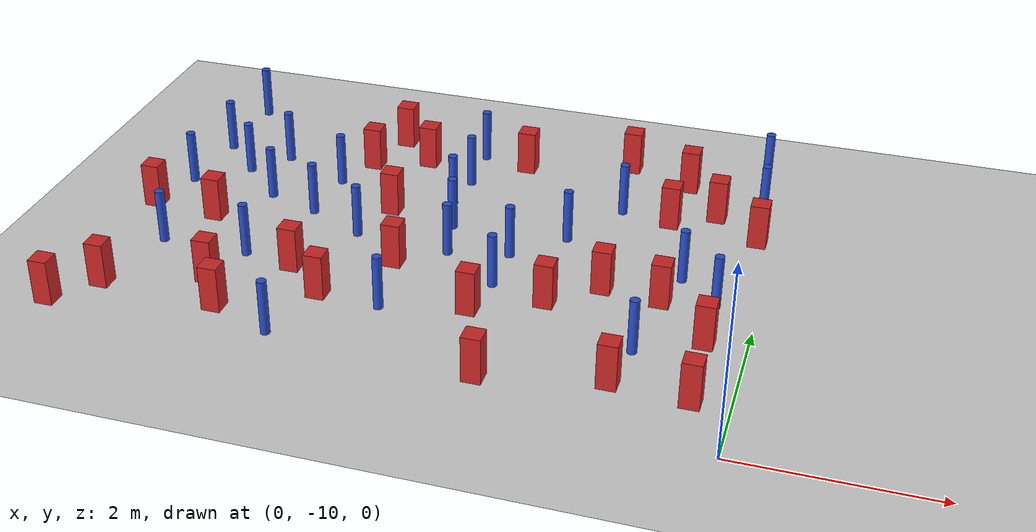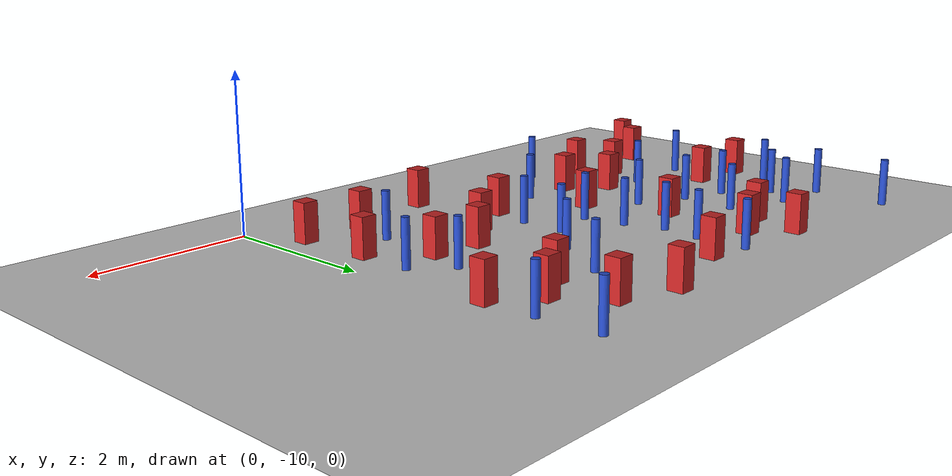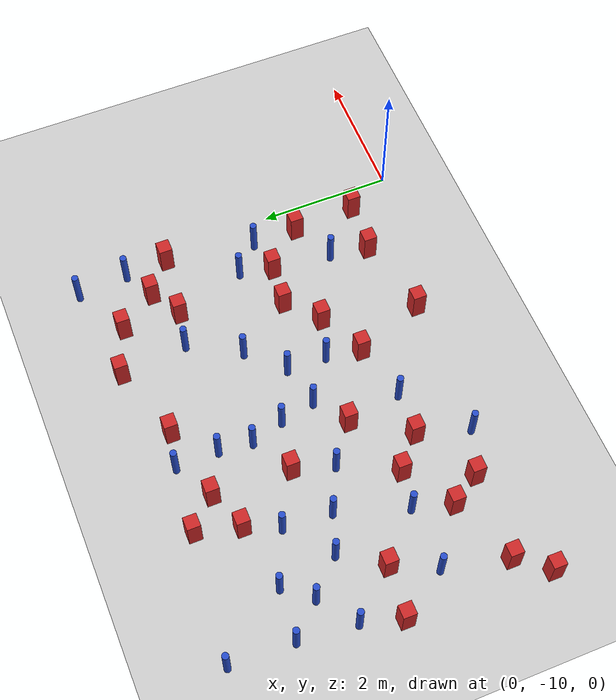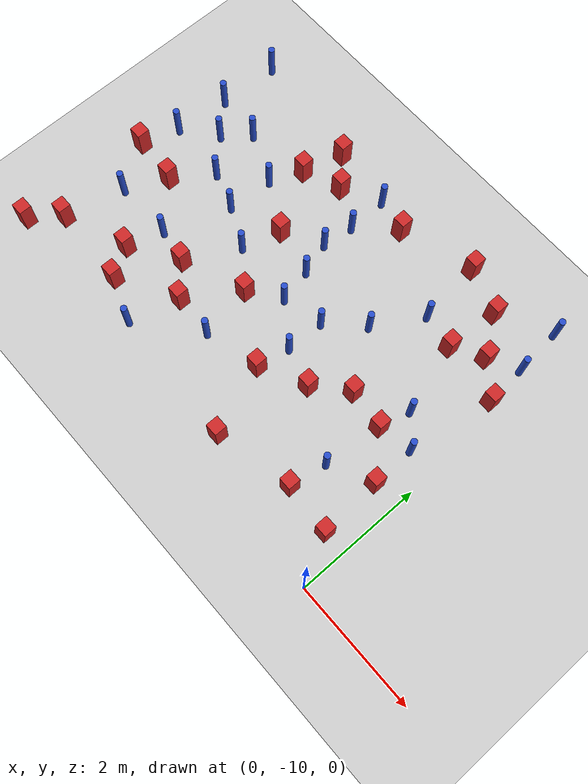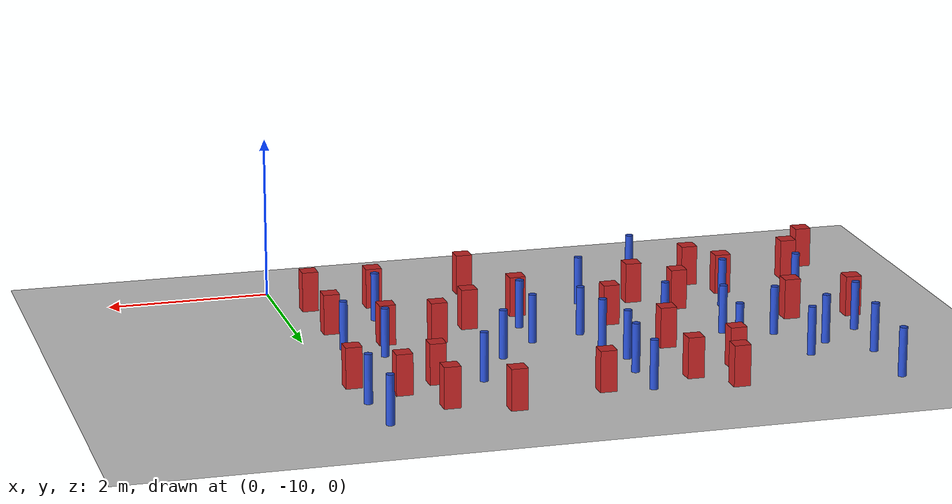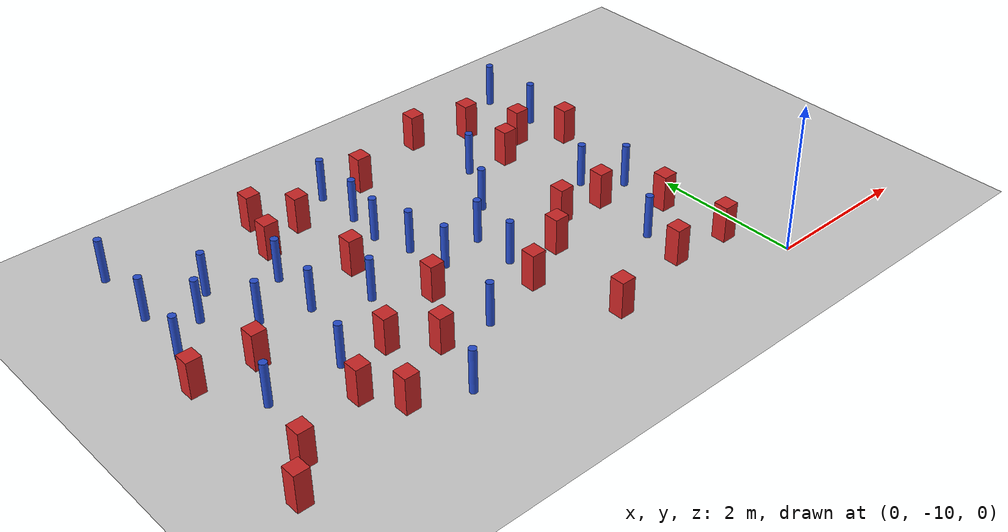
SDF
<sdf version="1.6">
 <world name="default">
  <model name="ground_plane">
   <static>1</static>
   <link name="link">
    <collision name="collision">
     <geometry><plane><normal>0 0 1</normal><size>100 100</size></plane></geometry>
     <surface><friction><ode><mu>100</mu><mu2>50</mu2></ode></friction></surface>
    </collision>
    <visual name="visual">
     <cast_shadows>0</cast_shadows>
     <geometry><plane><normal>0 0 1</normal><size>100 100</size></plane></geometry>
     <material>
      <ambient>1.0 1.0 1.0 1.0</ambient>
      <diffuse>0.8 0.8 0.8 1.0</diffuse>
      <specular>0.01 0.01 0.01 1.000000</specular>
     </material>
    </visual>
   </link>
  </model>
  <model name="square_post_obstacle0">
   <static>true</static>
   <pose>-6.76671333463 -7.36442165139 1.91545236811e-07 -7.35059704564e-06 1.12565212e-07 2.39332434364e-05</pose>
   <link name="link">
    <pose>0 0 0.25 0 -0 0</pose>
    <inertial>
     <mass>100</mass>
     <inertia>
      <ixx>0.166667</ixx>
      <ixy>0</ixy>
      <ixz>0</ixz>
      <iyy>0.166667</iyy>
      <iyz>0</iyz>
      <izz>0.166667</izz>
     </inertia>
    </inertial>
    <collision name="collision"><geometry><box><size>.2 .2 .5</size></box></geometry></collision>
    <visual name="visual">
     <geometry><box><size>.2 .2 .5</size></box></geometry>
     <material>
      <script><name>Gazebo/Red</name><uri>file://media/materials/scripts/gazebo.material</uri></script>
     </material>
    </visual>
   </link>
  </model>
  <model name="pole_obstacle0">
   <static>true</static>
   <pose>-4.36487225935 -7.36357228489 7.38925637345e-09 -8.47170692796e-08 1.24976764786e-08 -1.74513093032e-07</pose>
   <link name="link">
    <pose>0 0 0.3 0 -0 0</pose>
    <inertial>
     <mass>1</mass>
     <inertia><ixx>0.145833</ixx><ixy>0</ixy><ixz>0</ixz><iyy>0.145833</iyy><iyz>0</iyz><izz>0.125</izz></inertia>
    </inertial>
    <collision name="collision">
     <geometry><cylinder><radius>0.05</radius><length>.6</length></cylinder></geometry>
    </collision>
    <visual name="visual">
     <geometry><cylinder><radius>0.05</radius><length>.6</length></cylinder></geometry>
     <material>
      <script><name>Gazebo/Blue</name><uri>file://media/materials/scripts/gazebo.material</uri></script>
     </material>
    </visual>
   </link>
  </model>
  <model name="square_post_obstacle5">
   <static>true</static>
   <pose>-5.23088363915 -9.11303730283 1.91545236811e-07 -7.35059704564e-06 1.12565212e-07 2.39332434364e-05</pose>
   <link name="link">
    <pose>0 0 0.25 0 -0 0</pose>
    <inertial>
     <mass>100</mass>
     <inertia>
      <ixx>0.166667</ixx>
      <ixy>0</ixy>
      <ixz>0</ixz>
      <iyy>0.166667</iyy>
      <iyz>0</iyz>
      <izz>0.166667</izz>
     </inertia>
    </inertial>
    <collision name="collision"><geometry><box><size>.2 .2 .5</size></box></geometry></collision>
    <visual name="visual">
     <geometry><box><size>.2 .2 .5</size></box></geometry>
     <material>
      <script><name>Gazebo/Red</name><uri>file://media/materials/scripts/gazebo.material</uri></script>
     </material>
    </visual>
   </link>
  </model>
  <model name="pole_obstacle5">
   <static>true</static>
   <pose>-0.245421872697 -5.62670158152 7.38925637345e-09 -8.47170692799e-08 1.2497676507e-08 -1.74513093018e-07</pose>
   <link name="link">
    <pose>0 0 0.3 0 -0 0</pose>
    <inertial>
     <mass>1</mass>
     <inertia><ixx>0.145833</ixx><ixy>0</ixy><ixz>0</ixz><iyy>0.145833</iyy><iyz>0</iyz><izz>0.125</izz></inertia>
    </inertial>
    <collision name="collision">
     <geometry><cylinder><radius>0.05</radius><length>.6</length></cylinder></geometry>
    </collision>
    <visual name="visual">
     <geometry><cylinder><radius>0.05</radius><length>.6</length></cylinder></geometry>
     <material>
      <script><name>Gazebo/Blue</name><uri>file://media/materials/scripts/gazebo.material</uri></script>
     </material>
    </visual>
   </link>
  </model>
  <model name="square_post_obstacle7">
   <static>true</static>
   <pose>-3.00368671841 -5.3784053675 1.91545236811e-07 -7.35059704564e-06 1.12565212e-07 2.39332434364e-05</pose>
   <link name="link">
    <pose>0 0 0.25 0 -0 0</pose>
    <inertial>
     <mass>100</mass>
     <inertia>
      <ixx>0.166667</ixx>
      <ixy>0</ixy>
      <ixz>0</ixz>
      <iyy>0.166667</iyy>
      <iyz>0</iyz>
      <izz>0.166667</izz>
     </inertia>
    </inertial>
    <collision name="collision"><geometry><box><size>.2 .2 .5</size></box></geometry></collision>
    <visual name="visual">
     <geometry><box><size>.2 .2 .5</size></box></geometry>
     <material>
      <script><name>Gazebo/Red</name><uri>file://media/materials/scripts/gazebo.material</uri></script>
     </material>
    </visual>
   </link>
  </model>
  <model name="square_post_obstacle11">
   <static>true</static>
   <pose>-1.18005048999 -6.15033566923 1.91545236811e-07 -7.35059704564e-06 1.12565212e-07 2.39332434364e-05</pose>
   <link name="link">
    <pose>0 0 0.25 0 -0 0</pose>
    <inertial>
     <mass>100</mass>
     <inertia>
      <ixx>0.166667</ixx>
      <ixy>0</ixy>
      <ixz>0</ixz>
      <iyy>0.166667</iyy>
      <iyz>0</iyz>
      <izz>0.166667</izz>
     </inertia>
    </inertial>
    <collision name="collision"><geometry><box><size>.2 .2 .5</size></box></geometry></collision>
    <visual name="visual">
     <geometry><box><size>.2 .2 .5</size></box></geometry>
     <material>
      <script><name>Gazebo/Red</name><uri>file://media/materials/scripts/gazebo.material</uri></script>
     </material>
    </visual>
   </link>
  </model>
  <model name="square_post_obstacle15">
   <static>true</static>
   <pose>-4.73293438158 -5.81196238681 1.91545236811e-07 -7.35059704564e-06 1.12565212e-07 2.39332434364e-05</pose>
   <link name="link">
    <pose>0 0 0.25 0 -0 0</pose>
    <inertial>
     <mass>100</mass>
     <inertia>
      <ixx>0.166667</ixx>
      <ixy>0</ixy>
      <ixz>0</ixz>
      <iyy>0.166667</iyy>
      <iyz>0</iyz>
      <izz>0.166667</izz>
     </inertia>
    </inertial>
    <collision name="collision"><geometry><box><size>.2 .2 .5</size></box></geometry></collision>
    <visual name="visual">
     <geometry><box><size>.2 .2 .5</size></box></geometry>
     <material>
      <script><name>Gazebo/Red</name><uri>file://media/materials/scripts/gazebo.material</uri></script>
     </material>
    </visual>
   </link>
  </model>
  <model name="square_post_obstacle19">
   <static>true</static>
   <pose>-0.374803447816 -9.28745587737 1.91545236811e-07 -7.35059704564e-06 1.12565212e-07 2.39332434364e-05</pose>
   <link name="link">
    <pose>0 0 0.25 0 -0 0</pose>
    <inertial>
     <mass>100</mass>
     <inertia>
      <ixx>0.166667</ixx>
      <ixy>0</ixy>
      <ixz>0</ixz>
      <iyy>0.166667</iyy>
      <iyz>0</iyz>
      <izz>0.166667</izz>
     </inertia>
    </inertial>
    <collision name="collision"><geometry><box><size>.2 .2 .5</size></box></geometry></collision>
    <visual name="visual">
     <geometry><box><size>.2 .2 .5</size></box></geometry>
     <material>
      <script><name>Gazebo/Red</name><uri>file://media/materials/scripts/gazebo.material</uri></script>
     </material>
    </visual>
   </link>
  </model>
  <model name="pole_obstacle16">
   <static>true</static>
   <pose>-3.65384700779 -8.64325858429 7.38925637345e-09 -8.47170692793e-08 1.24976764408e-08 -1.74513093041e-07</pose>
   <link name="link">
    <pose>0 0 0.3 0 -0 0</pose>
    <inertial>
     <mass>1</mass>
     <inertia><ixx>0.145833</ixx><ixy>0</ixy><ixz>0</ixz><iyy>0.145833</iyy><iyz>0</iyz><izz>0.125</izz></inertia>
    </inertial>
    <collision name="collision">
     <geometry><cylinder><radius>0.05</radius><length>.6</length></cylinder></geometry>
    </collision>
    <visual name="visual">
     <geometry><cylinder><radius>0.05</radius><length>.6</length></cylinder></geometry>
     <material>
      <script><name>Gazebo/Blue</name><uri>file://media/materials/scripts/gazebo.material</uri></script>
     </material>
    </visual>
   </link>
  </model>
  <model name="square_post_obstacle27">
   <static>true</static>
   <pose>-6.89402320296 -9.49622652182 1.91545236811e-07 -7.35059704564e-06 1.12565212e-07 2.39332434364e-05</pose>
   <link name="link">
    <pose>0 0 0.25 0 -0 0</pose>
    <inertial>
     <mass>100</mass>
     <inertia>
      <ixx>0.166667</ixx>
      <ixy>0</ixy>
      <ixz>0</ixz>
      <iyy>0.166667</iyy>
      <iyz>0</iyz>
      <izz>0.166667</izz>
     </inertia>
    </inertial>
    <collision name="collision"><geometry><box><size>.2 .2 .5</size></box></geometry></collision>
    <visual name="visual">
     <geometry><box><size>.2 .2 .5</size></box></geometry>
     <material>
      <script><name>Gazebo/Red</name><uri>file://media/materials/scripts/gazebo.material</uri></script>
     </material>
    </visual>
   </link>
  </model>
  <model name="pole_obstacle29">
   <static>true</static>
   <pose>-1.7302621097 -6.05017245019 7.38925637345e-09 -8.47170692799e-08 1.24976765033e-08 -1.74513093018e-07</pose>
   <link name="link">
    <pose>0 0 0.3 0 -0 0</pose>
    <inertial>
     <mass>1</mass>
     <inertia><ixx>0.145833</ixx><ixy>0</ixy><ixz>0</ixz><iyy>0.145833</iyy><iyz>0</iyz><izz>0.125</izz></inertia>
    </inertial>
    <collision name="collision">
     <geometry><cylinder><radius>0.05</radius><length>.6</length></cylinder></geometry>
    </collision>
    <visual name="visual">
     <geometry><cylinder><radius>0.05</radius><length>.6</length></cylinder></geometry>
     <material>
      <script><name>Gazebo/Blue</name><uri>file://media/materials/scripts/gazebo.material</uri></script>
     </material>
    </visual>
   </link>
  </model>
  <model name="pole_obstacle36">
   <static>true</static>
   <pose>-1.06009149952 -8.64865831625 7.38925637345e-09 -8.47170692798e-08 1.24976764881e-08 -1.74513093027e-07</pose>
   <link name="link">
    <pose>0 0 0.3 0 -0 0</pose>
    <inertial>
     <mass>1</mass>
     <inertia><ixx>0.145833</ixx><ixy>0</ixy><ixz>0</ixz><iyy>0.145833</iyy><iyz>0</iyz><izz>0.125</izz></inertia>
    </inertial>
    <collision name="collision">
     <geometry><cylinder><radius>0.05</radius><length>.6</length></cylinder></geometry>
    </collision>
    <visual name="visual">
     <geometry><cylinder><radius>0.05</radius><length>.6</length></cylinder></geometry>
     <material>
      <script><name>Gazebo/Blue</name><uri>file://media/materials/scripts/gazebo.material</uri></script>
     </material>
    </visual>
   </link>
  </model>
  <model name="square_post_obstacle37">
   <static>true</static>
   <pose>-4.32683516421 -8.59443291819 1.91545236811e-07 -7.35059704564e-06 1.12565212e-07 2.39332434364e-05</pose>
   <link name="link">
    <pose>0 0 0.25 0 -0 0</pose>
    <inertial>
     <mass>100</mass>
     <inertia>
      <ixx>0.166667</ixx>
      <ixy>0</ixy>
      <ixz>0</ixz>
      <iyy>0.166667</iyy>
      <iyz>0</iyz>
      <izz>0.166667</izz>
     </inertia>
    </inertial>
    <collision name="collision"><geometry><box><size>.2 .2 .5</size></box></geometry></collision>
    <visual name="visual">
     <geometry><box><size>.2 .2 .5</size></box></geometry>
     <material>
      <script><name>Gazebo/Red</name><uri>file://media/materials/scripts/gazebo.material</uri></script>
     </material>
    </visual>
   </link>
  </model>
  <model name="square_post_obstacle40">
   <static>true</static>
   <pose>-3.79360473793 -7.794541156 1.91545236811e-07 -7.35059704564e-06 1.12565212e-07 2.39332434364e-05</pose>
   <link name="link">
    <pose>0 0 0.25 0 -0 0</pose>
    <inertial>
     <mass>100</mass>
     <inertia>
      <ixx>0.166667</ixx>
      <ixy>0</ixy>
      <ixz>0</ixz>
      <iyy>0.166667</iyy>
      <iyz>0</iyz>
      <izz>0.166667</izz>
     </inertia>
    </inertial>
    <collision name="collision"><geometry><box><size>.2 .2 .5</size></box></geometry></collision>
    <visual name="visual">
     <geometry><box><size>.2 .2 .5</size></box></geometry>
     <material>
      <script><name>Gazebo/Red</name><uri>file://media/materials/scripts/gazebo.material</uri></script>
     </material>
    </visual>
   </link>
  </model>
  <model name="square_post_obstacle49">
   <static>true</static>
   <pose>-2.07915912199 -8.07841403277 1.91545236811e-07 -7.35059704564e-06 1.12565212e-07 2.39332434364e-05</pose>
   <link name="link">
    <pose>0 0 0.25 0 -0 0</pose>
    <inertial>
     <mass>100</mass>
     <inertia>
      <ixx>0.166667</ixx>
      <ixy>0</ixy>
      <ixz>0</ixz>
      <iyy>0.166667</iyy>
      <iyz>0</iyz>
      <izz>0.166667</izz>
     </inertia>
    </inertial>
    <collision name="collision"><geometry><box><size>.2 .2 .5</size></box></geometry></collision>
    <visual name="visual">
     <geometry><box><size>.2 .2 .5</size></box></geometry>
     <material>
      <script><name>Gazebo/Red</name><uri>file://media/materials/scripts/gazebo.material</uri></script>
     </material>
    </visual>
   </link>
  </model>
  <model name="pole_obstacle54">
   <static>true</static>
   <pose>-3.43110741692 -6.91244644693 7.38925637345e-09 -8.47170692798e-08 1.24976765033e-08 -1.74513093019e-07</pose>
   <link name="link">
    <pose>0 0 0.3 0 -0 0</pose>
    <inertial>
     <mass>1</mass>
     <inertia><ixx>0.145833</ixx><ixy>0</ixy><ixz>0</ixz><iyy>0.145833</iyy><iyz>0</iyz><izz>0.125</izz></inertia>
    </inertial>
    <collision name="collision">
     <geometry><cylinder><radius>0.05</radius><length>.6</length></cylinder></geometry>
    </collision>
    <visual name="visual">
     <geometry><cylinder><radius>0.05</radius><length>.6</length></cylinder></geometry>
     <material>
      <script><name>Gazebo/Blue</name><uri>file://media/materials/scripts/gazebo.material</uri></script>
     </material>
    </visual>
   </link>
  </model>
  <model name="pole_obstacle59">
   <static>true</static>
   <pose>-6.30751083923 -8.08951508925 7.38925637345e-09 -8.471706928e-08 1.24976765081e-08 -1.74513093015e-07</pose>
   <link name="link">
    <pose>0 0 0.3 0 -0 0</pose>
    <inertial>
     <mass>1</mass>
     <inertia><ixx>0.145833</ixx><ixy>0</ixy><ixz>0</ixz><iyy>0.145833</iyy><iyz>0</iyz><izz>0.125</izz></inertia>
    </inertial>
    <collision name="collision">
     <geometry><cylinder><radius>0.05</radius><length>.6</length></cylinder></geometry>
    </collision>
    <visual name="visual">
     <geometry><cylinder><radius>0.05</radius><length>.6</length></cylinder></geometry>
     <material>
      <script><name>Gazebo/Blue</name><uri>file://media/materials/scripts/gazebo.material</uri></script>
     </material>
    </visual>
   </link>
  </model>
  <model name="pole_obstacle62">
   <static>true</static>
   <pose>-6.47931020482 -4.93916479977 7.38925637345e-09 -8.47170692796e-08 1.24976764786e-08 -1.74513093032e-07</pose>
   <link name="link">
    <pose>0 0 0.3 0 -0 0</pose>
    <inertial>
     <mass>1</mass>
     <inertia><ixx>0.145833</ixx><ixy>0</ixy><ixz>0</ixz><iyy>0.145833</iyy><iyz>0</iyz><izz>0.125</izz></inertia>
    </inertial>
    <collision name="collision">
     <geometry><cylinder><radius>0.05</radius><length>.6</length></cylinder></geometry>
    </collision>
    <visual name="visual">
     <geometry><cylinder><radius>0.05</radius><length>.6</length></cylinder></geometry>
     <material>
      <script><name>Gazebo/Blue</name><uri>file://media/materials/scripts/gazebo.material</uri></script>
     </material>
    </visual>
   </link>
  </model>
  <model name="square_post_obstacle70">
   <static>true</static>
   <pose>-2.78222985498 -8.42560607912 1.91545236811e-07 -7.35059704564e-06 1.12565212e-07 2.39332434364e-05</pose>
   <link name="link">
    <pose>0 0 0.25 0 -0 0</pose>
    <inertial>
     <mass>100</mass>
     <inertia>
      <ixx>0.166667</ixx>
      <ixy>0</ixy>
      <ixz>0</ixz>
      <iyy>0.166667</iyy>
      <iyz>0</iyz>
      <izz>0.166667</izz>
     </inertia>
    </inertial>
    <collision name="collision"><geometry><box><size>.2 .2 .5</size></box></geometry></collision>
    <visual name="visual">
     <geometry><box><size>.2 .2 .5</size></box></geometry>
     <material>
      <script><name>Gazebo/Red</name><uri>file://media/materials/scripts/gazebo.material</uri></script>
     </material>
    </visual>
   </link>
  </model>
  <model name="pole_obstacle69">
   <static>true</static>
   <pose>-5.34729037057 -8.08957492752 7.38925637345e-09 -8.471706928e-08 1.24976765081e-08 -1.74513093015e-07</pose>
   <link name="link">
    <pose>0 0 0.3 0 -0 0</pose>
    <inertial>
     <mass>1</mass>
     <inertia><ixx>0.145833</ixx><ixy>0</ixy><ixz>0</ixz><iyy>0.145833</iyy><iyz>0</iyz><izz>0.125</izz></inertia>
    </inertial>
    <collision name="collision">
     <geometry><cylinder><radius>0.05</radius><length>.6</length></cylinder></geometry>
    </collision>
    <visual name="visual">
     <geometry><cylinder><radius>0.05</radius><length>.6</length></cylinder></geometry>
     <material>
      <script><name>Gazebo/Blue</name><uri>file://media/materials/scripts/gazebo.material</uri></script>
     </material>
    </visual>
   </link>
  </model>
  <model name="pole_obstacle70">
   <static>true</static>
   <pose>-6.06637980943 -6.36417697773 7.38925637345e-09 -8.47170692796e-08 1.24976764786e-08 -1.74513093032e-07</pose>
   <link name="link">
    <pose>0 0 0.3 0 -0 0</pose>
    <inertial>
     <mass>1</mass>
     <inertia><ixx>0.145833</ixx><ixy>0</ixy><ixz>0</ixz><iyy>0.145833</iyy><iyz>0</iyz><izz>0.125</izz></inertia>
    </inertial>
    <collision name="collision">
     <geometry><cylinder><radius>0.05</radius><length>.6</length></cylinder></geometry>
    </collision>
    <visual name="visual">
     <geometry><cylinder><radius>0.05</radius><length>.6</length></cylinder></geometry>
     <material>
      <script><name>Gazebo/Blue</name><uri>file://media/materials/scripts/gazebo.material</uri></script>
     </material>
    </visual>
   </link>
  </model>
  <model name="square_post_obstacle76">
   <static>true</static>
   <pose>-0.969463690988 -7.73070870616 1.91545236811e-07 -7.35059704564e-06 1.12565212e-07 2.39332434364e-05</pose>
   <link name="link">
    <pose>0 0 0.25 0 -0 0</pose>
    <inertial>
     <mass>100</mass>
     <inertia>
      <ixx>0.166667</ixx>
      <ixy>0</ixy>
      <ixz>0</ixz>
      <iyy>0.166667</iyy>
      <iyz>0</iyz>
      <izz>0.166667</izz>
     </inertia>
    </inertial>
    <collision name="collision"><geometry><box><size>.2 .2 .5</size></box></geometry></collision>
    <visual name="visual">
     <geometry><box><size>.2 .2 .5</size></box></geometry>
     <material>
      <script><name>Gazebo/Red</name><uri>file://media/materials/scripts/gazebo.material</uri></script>
     </material>
    </visual>
   </link>
  </model>
  <model name="pole_obstacle75">
   <static>true</static>
   <pose>-2.17178786832 -6.80553382906 7.38925637345e-09 -8.47170692798e-08 1.24976765033e-08 -1.74513093019e-07</pose>
   <link name="link">
    <pose>0 0 0.3 0 -0 0</pose>
    <inertial>
     <mass>1</mass>
     <inertia><ixx>0.145833</ixx><ixy>0</ixy><ixz>0</ixz><iyy>0.145833</iyy><iyz>0</iyz><izz>0.125</izz></inertia>
    </inertial>
    <collision name="collision">
     <geometry><cylinder><radius>0.05</radius><length>.6</length></cylinder></geometry>
    </collision>
    <visual name="visual">
     <geometry><cylinder><radius>0.05</radius><length>.6</length></cylinder></geometry>
     <material>
      <script><name>Gazebo/Blue</name><uri>file://media/materials/scripts/gazebo.material</uri></script>
     </material>
    </visual>
   </link>
  </model>
  <model name="pole_obstacle82">
   <static>true</static>
   <pose>-2.68429456614 -7.90415686494 7.38925637345e-09 -8.47170692798e-08 1.24976765033e-08 -1.74513093019e-07</pose>
   <link name="link">
    <pose>0 0 0.3 0 -0 0</pose>
    <inertial>
     <mass>1</mass>
     <inertia><ixx>0.145833</ixx><ixy>0</ixy><ixz>0</ixz><iyy>0.145833</iyy><iyz>0</iyz><izz>0.125</izz></inertia>
    </inertial>
    <collision name="collision">
     <geometry><cylinder><radius>0.05</radius><length>.6</length></cylinder></geometry>
    </collision>
    <visual name="visual">
     <geometry><cylinder><radius>0.05</radius><length>.6</length></cylinder></geometry>
     <material>
      <script><name>Gazebo/Blue</name><uri>file://media/materials/scripts/gazebo.material</uri></script>
     </material>
    </visual>
   </link>
  </model>
  <model name="pole_obstacle86">
   <static>true</static>
   <pose>-4.99949107294 -7.05038070719 7.38925637345e-09 -8.47170692796e-08 1.24976764786e-08 -1.74513093032e-07</pose>
   <link name="link">
    <pose>0 0 0.3 0 -0 0</pose>
    <inertial>
     <mass>1</mass>
     <inertia><ixx>0.145833</ixx><ixy>0</ixy><ixz>0</ixz><iyy>0.145833</iyy><iyz>0</iyz><izz>0.125</izz></inertia>
    </inertial>
    <collision name="collision">
     <geometry><cylinder><radius>0.05</radius><length>.6</length></cylinder></geometry>
    </collision>
    <visual name="visual">
     <geometry><cylinder><radius>0.05</radius><length>.6</length></cylinder></geometry>
     <material>
      <script><name>Gazebo/Blue</name><uri>file://media/materials/scripts/gazebo.material</uri></script>
     </material>
    </visual>
   </link>
  </model>
  <model name="pole_obstacle87">
   <static>true</static>
   <pose>-6.50937850169 -5.90196650714 7.38925637345e-09 -8.47170692796e-08 1.24976764786e-08 -1.74513093032e-07</pose>
   <link name="link">
    <pose>0 0 0.3 0 -0 0</pose>
    <inertial>
     <mass>1</mass>
     <inertia><ixx>0.145833</ixx><ixy>0</ixy><ixz>0</ixz><iyy>0.145833</iyy><iyz>0</iyz><izz>0.125</izz></inertia>
    </inertial>
    <collision name="collision">
     <geometry><cylinder><radius>0.05</radius><length>.6</length></cylinder></geometry>
    </collision>
    <visual name="visual">
     <geometry><cylinder><radius>0.05</radius><length>.6</length></cylinder></geometry>
     <material>
      <script><name>Gazebo/Blue</name><uri>file://media/materials/scripts/gazebo.material</uri></script>
     </material>
    </visual>
   </link>
  </model>
  <model name="pole_obstacle90">
   <static>true</static>
   <pose>-5.73791890071 -5.96985570575 7.38925637345e-09 -8.47170692796e-08 1.24976764786e-08 -1.74513093032e-07</pose>
   <link name="link">
    <pose>0 0 0.3 0 -0 0</pose>
    <inertial>
     <mass>1</mass>
     <inertia><ixx>0.145833</ixx><ixy>0</ixy><ixz>0</ixz><iyy>0.145833</iyy><iyz>0</iyz><izz>0.125</izz></inertia>
    </inertial>
    <collision name="collision">
     <geometry><cylinder><radius>0.05</radius><length>.6</length></cylinder></geometry>
    </collision>
    <visual name="visual">
     <geometry><cylinder><radius>0.05</radius><length>.6</length></cylinder></geometry>
     <material>
      <script><name>Gazebo/Blue</name><uri>file://media/materials/scripts/gazebo.material</uri></script>
     </material>
    </visual>
   </link>
  </model>
  <model name="pole_obstacle94">
   <static>true</static>
   <pose>-3.54417104302 -5.26296033128 7.38925637345e-09 -8.47170692794e-08 1.24976764468e-08 -1.7451309304e-07</pose>
   <link name="link">
    <pose>0 0 0.3 0 -0 0</pose>
    <inertial>
     <mass>1</mass>
     <inertia><ixx>0.145833</ixx><ixy>0</ixy><ixz>0</ixz><iyy>0.145833</iyy><iyz>0</iyz><izz>0.125</izz></inertia>
    </inertial>
    <collision name="collision">
     <geometry><cylinder><radius>0.05</radius><length>.6</length></cylinder></geometry>
    </collision>
    <visual name="visual">
     <geometry><cylinder><radius>0.05</radius><length>.6</length></cylinder></geometry>
     <material>
      <script><name>Gazebo/Blue</name><uri>file://media/materials/scripts/gazebo.material</uri></script>
     </material>
    </visual>
   </link>
  </model>
  <model name="square_post_obstacle98">
   <static>true</static>
   <pose>-0.422253860799 -8.31969578706 1.91545236811e-07 -7.35059704564e-06 1.12565212e-07 2.39332434364e-05</pose>
   <link name="link">
    <pose>0 0 0.25 0 -0 0</pose>
    <inertial>
     <mass>100</mass>
     <inertia>
      <ixx>0.166667</ixx>
      <ixy>0</ixy>
      <ixz>0</ixz>
      <iyy>0.166667</iyy>
      <iyz>0</iyz>
      <izz>0.166667</izz>
     </inertia>
    </inertial>
    <collision name="collision"><geometry><box><size>.2 .2 .5</size></box></geometry></collision>
    <visual name="visual">
     <geometry><box><size>.2 .2 .5</size></box></geometry>
     <material>
      <script><name>Gazebo/Red</name><uri>file://media/materials/scripts/gazebo.material</uri></script>
     </material>
    </visual>
   </link>
  </model>
  <model name="square_post_obstacle109">
   <static>true</static>
   <pose>-4.13237268256 -5.58434631646 1.91545236811e-07 -7.35059704564e-06 1.12565212e-07 2.39332434364e-05</pose>
   <link name="link">
    <pose>0 0 0.25 0 -0 0</pose>
    <inertial>
     <mass>100</mass>
     <inertia>
      <ixx>0.166667</ixx>
      <ixy>0</ixy>
      <ixz>0</ixz>
      <iyy>0.166667</iyy>
      <iyz>0</iyz>
      <izz>0.166667</izz>
     </inertia>
    </inertial>
    <collision name="collision"><geometry><box><size>.2 .2 .5</size></box></geometry></collision>
    <visual name="visual">
     <geometry><box><size>.2 .2 .5</size></box></geometry>
     <material>
      <script><name>Gazebo/Red</name><uri>file://media/materials/scripts/gazebo.material</uri></script>
     </material>
    </visual>
   </link>
  </model>
  <model name="pole_obstacle120">
   <static>true</static>
   <pose>-0.428505825554 -7.63675978329 7.38925637345e-09 -8.471706928e-08 1.24976765079e-08 -1.74513093015e-07</pose>
   <link name="link">
    <pose>0 0 0.3 0 -0 0</pose>
    <inertial>
     <mass>1</mass>
     <inertia><ixx>0.145833</ixx><ixy>0</ixy><ixz>0</ixz><iyy>0.145833</iyy><iyz>0</iyz><izz>0.125</izz></inertia>
    </inertial>
    <collision name="collision">
     <geometry><cylinder><radius>0.05</radius><length>.6</length></cylinder></geometry>
    </collision>
    <visual name="visual">
     <geometry><cylinder><radius>0.05</radius><length>.6</length></cylinder></geometry>
     <material>
      <script><name>Gazebo/Blue</name><uri>file://media/materials/scripts/gazebo.material</uri></script>
     </material>
    </visual>
   </link>
  </model>
  <model name="pole_obstacle123">
   <static>true</static>
   <pose>-3.52945708191 -5.90692218039 7.38925637345e-09 -8.47170692798e-08 1.24976765033e-08 -1.74513093019e-07</pose>
   <link name="link">
    <pose>0 0 0.3 0 -0 0</pose>
    <inertial>
     <mass>1</mass>
     <inertia><ixx>0.145833</ixx><ixy>0</ixy><ixz>0</ixz><iyy>0.145833</iyy><iyz>0</iyz><izz>0.125</izz></inertia>
    </inertial>
    <collision name="collision">
     <geometry><cylinder><radius>0.05</radius><length>.6</length></cylinder></geometry>
    </collision>
    <visual name="visual">
     <geometry><cylinder><radius>0.05</radius><length>.6</length></cylinder></geometry>
     <material>
      <script><name>Gazebo/Blue</name><uri>file://media/materials/scripts/gazebo.material</uri></script>
     </material>
    </visual>
   </link>
  </model>
  <model name="square_post_obstacle115">
   <static>true</static>
   <pose>-0.711161647151 -5.87512863862 1.91545236811e-07 -7.35059704564e-06 1.12565212e-07 2.39332434364e-05</pose>
   <link name="link">
    <pose>0 0 0.25 0 -0 0</pose>
    <inertial>
     <mass>100</mass>
     <inertia>
      <ixx>0.166667</ixx>
      <ixy>0</ixy>
      <ixz>0</ixz>
      <iyy>0.166667</iyy>
      <iyz>0</iyz>
      <izz>0.166667</izz>
     </inertia>
    </inertial>
    <collision name="collision"><geometry><box><size>.2 .2 .5</size></box></geometry></collision>
    <visual name="visual">
     <geometry><box><size>.2 .2 .5</size></box></geometry>
     <material>
      <script><name>Gazebo/Red</name><uri>file://media/materials/scripts/gazebo.material</uri></script>
     </material>
    </visual>
   </link>
  </model>
  <model name="square_post_obstacle119">
   <static>true</static>
   <pose>-1.12274351604 -5.29267696609 1.91545236811e-07 -7.35059704564e-06 1.12565212e-07 2.39332434364e-05</pose>
   <link name="link">
    <pose>0 0 0.25 0 -0 0</pose>
    <inertial>
     <mass>100</mass>
     <inertia>
      <ixx>0.166667</ixx>
      <ixy>0</ixy>
      <ixz>0</ixz>
      <iyy>0.166667</iyy>
      <iyz>0</iyz>
      <izz>0.166667</izz>
     </inertia>
    </inertial>
    <collision name="collision"><geometry><box><size>.2 .2 .5</size></box></geometry></collision>
    <visual name="visual">
     <geometry><box><size>.2 .2 .5</size></box></geometry>
     <material>
      <script><name>Gazebo/Red</name><uri>file://media/materials/scripts/gazebo.material</uri></script>
     </material>
    </visual>
   </link>
  </model>
  <model name="square_post_obstacle123">
   <static>true</static>
   <pose>-4.78441876031 -8.18471164831 1.91545236811e-07 -7.35059704564e-06 1.12565212e-07 2.39332434364e-05</pose>
   <link name="link">
    <pose>0 0 0.25 0 -0 0</pose>
    <inertial>
     <mass>100</mass>
     <inertia>
      <ixx>0.166667</ixx>
      <ixy>0</ixy>
      <ixz>0</ixz>
      <iyy>0.166667</iyy>
      <iyz>0</iyz>
      <izz>0.166667</izz>
     </inertia>
    </inertial>
    <collision name="collision"><geometry><box><size>.2 .2 .5</size></box></geometry></collision>
    <visual name="visual">
     <geometry><box><size>.2 .2 .5</size></box></geometry>
     <material>
      <script><name>Gazebo/Red</name><uri>file://media/materials/scripts/gazebo.material</uri></script>
     </material>
    </visual>
   </link>
  </model>
  <model name="square_post_obstacle125">
   <static>true</static>
   <pose>-6.52817794964 -9.04445052767 1.91545236811e-07 -7.35059704564e-06 1.12565212e-07 2.39332434364e-05</pose>
   <link name="link">
    <pose>0 0 0.25 0 -0 0</pose>
    <inertial>
     <mass>100</mass>
     <inertia>
      <ixx>0.166667</ixx>
      <ixy>0</ixy>
      <ixz>0</ixz>
      <iyy>0.166667</iyy>
      <iyz>0</iyz>
      <izz>0.166667</izz>
     </inertia>
    </inertial>
    <collision name="collision"><geometry><box><size>.2 .2 .5</size></box></geometry></collision>
    <visual name="visual">
     <geometry><box><size>.2 .2 .5</size></box></geometry>
     <material>
      <script><name>Gazebo/Red</name><uri>file://media/materials/scripts/gazebo.material</uri></script>
     </material>
    </visual>
   </link>
  </model>
  <model name="square_post_obstacle126">
   <static>true</static>
   <pose>-4.1809994354 -6.75600551637 1.91545236811e-07 -7.35059704564e-06 1.12565212e-07 2.39332434364e-05</pose>
   <link name="link">
    <pose>0 0 0.25 0 -0 0</pose>
    <inertial>
     <mass>100</mass>
     <inertia>
      <ixx>0.166667</ixx>
      <ixy>0</ixy>
      <ixz>0</ixz>
      <iyy>0.166667</iyy>
      <iyz>0</iyz>
      <izz>0.166667</izz>
     </inertia>
    </inertial>
    <collision name="collision"><geometry><box><size>.2 .2 .5</size></box></geometry></collision>
    <visual name="visual">
     <geometry><box><size>.2 .2 .5</size></box></geometry>
     <material>
      <script><name>Gazebo/Red</name><uri>file://media/materials/scripts/gazebo.material</uri></script>
     </material>
    </visual>
   </link>
  </model>
  <model name="pole_obstacle146">
   <static>true</static>
   <pose>-0.311515397742 -4.85490187688 7.38925637345e-09 -8.471706928e-08 1.24976765079e-08 -1.74513093015e-07</pose>
   <link name="link">
    <pose>0 0 0.3 0 -0 0</pose>
    <inertial>
     <mass>1</mass>
     <inertia><ixx>0.145833</ixx><ixy>0</ixy><ixz>0</ixz><iyy>0.145833</iyy><iyz>0</iyz><izz>0.125</izz></inertia>
    </inertial>
    <collision name="collision">
     <geometry><cylinder><radius>0.05</radius><length>.6</length></cylinder></geometry>
    </collision>
    <visual name="visual">
     <geometry><cylinder><radius>0.05</radius><length>.6</length></cylinder></geometry>
     <material>
      <script><name>Gazebo/Blue</name><uri>file://media/materials/scripts/gazebo.material</uri></script>
     </material>
    </visual>
   </link>
  </model>
  <model name="square_post_obstacle138">
   <static>true</static>
   <pose>-2.38912309943 -9.49390183607 1.91545236811e-07 -7.35059704564e-06 1.12565212e-07 2.39332434364e-05</pose>
   <link name="link">
    <pose>0 0 0.25 0 -0 0</pose>
    <inertial>
     <mass>100</mass>
     <inertia>
      <ixx>0.166667</ixx>
      <ixy>0</ixy>
      <ixz>0</ixz>
      <iyy>0.166667</iyy>
      <iyz>0</iyz>
      <izz>0.166667</izz>
     </inertia>
    </inertial>
    <collision name="collision"><geometry><box><size>.2 .2 .5</size></box></geometry></collision>
    <visual name="visual">
     <geometry><box><size>.2 .2 .5</size></box></geometry>
     <material>
      <script><name>Gazebo/Red</name><uri>file://media/materials/scripts/gazebo.material</uri></script>
     </material>
    </visual>
   </link>
  </model>
  <model name="pole_obstacle149">
   <static>true</static>
   <pose>-3.58723326148 -6.40971630041 7.38925637345e-09 -8.47170692794e-08 1.24976764468e-08 -1.7451309304e-07</pose>
   <link name="link">
    <pose>0 0 0.3 0 -0 0</pose>
    <inertial>
     <mass>1</mass>
     <inertia><ixx>0.145833</ixx><ixy>0</ixy><ixz>0</ixz><iyy>0.145833</iyy><iyz>0</iyz><izz>0.125</izz></inertia>
    </inertial>
    <collision name="collision">
     <geometry><cylinder><radius>0.05</radius><length>.6</length></cylinder></geometry>
    </collision>
    <visual name="visual">
     <geometry><cylinder><radius>0.05</radius><length>.6</length></cylinder></geometry>
     <material>
      <script><name>Gazebo/Blue</name><uri>file://media/materials/scripts/gazebo.material</uri></script>
     </material>
    </visual>
   </link>
  </model>
  <model name="pole_obstacle150">
   <static>true</static>
   <pose>-4.5538658867 -9.38922065877 7.38925637345e-09 -8.471706928e-08 1.24976765081e-08 -1.74513093015e-07</pose>
   <link name="link">
    <pose>0 0 0.3 0 -0 0</pose>
    <inertial>
     <mass>1</mass>
     <inertia><ixx>0.145833</ixx><ixy>0</ixy><ixz>0</ixz><iyy>0.145833</iyy><iyz>0</iyz><izz>0.125</izz></inertia>
    </inertial>
    <collision name="collision">
     <geometry><cylinder><radius>0.05</radius><length>.6</length></cylinder></geometry>
    </collision>
    <visual name="visual">
     <geometry><cylinder><radius>0.05</radius><length>.6</length></cylinder></geometry>
     <material>
      <script><name>Gazebo/Blue</name><uri>file://media/materials/scripts/gazebo.material</uri></script>
     </material>
    </visual>
   </link>
  </model>
  <model name="square_post_obstacle145">
   <static>true</static>
   <pose>-4.55300717162 -5.1637642066 1.91545236811e-07 -7.35059704564e-06 1.12565212e-07 2.39332434364e-05</pose>
   <link name="link">
    <pose>0 0 0.25 0 -0 0</pose>
    <inertial>
     <mass>100</mass>
     <inertia>
      <ixx>0.166667</ixx>
      <ixy>0</ixy>
      <ixz>0</ixz>
      <iyy>0.166667</iyy>
      <iyz>0</iyz>
      <izz>0.166667</izz>
     </inertia>
    </inertial>
    <collision name="collision"><geometry><box><size>.2 .2 .5</size></box></geometry></collision>
    <visual name="visual">
     <geometry><box><size>.2 .2 .5</size></box></geometry>
     <material>
      <script><name>Gazebo/Red</name><uri>file://media/materials/scripts/gazebo.material</uri></script>
     </material>
    </visual>
   </link>
  </model>
  <model name="square_post_obstacle146">
   <static>true</static>
   <pose>-1.1639151391 -9.22687914759 1.91545236811e-07 -7.35059704564e-06 1.12565212e-07 2.39332434364e-05</pose>
   <link name="link">
    <pose>0 0 0.25 0 -0 0</pose>
    <inertial>
     <mass>100</mass>
     <inertia>
      <ixx>0.166667</ixx>
      <ixy>0</ixy>
      <ixz>0</ixz>
      <iyy>0.166667</iyy>
      <iyz>0</iyz>
      <izz>0.166667</izz>
     </inertia>
    </inertial>
    <collision name="collision"><geometry><box><size>.2 .2 .5</size></box></geometry></collision>
    <visual name="visual">
     <geometry><box><size>.2 .2 .5</size></box></geometry>
     <material>
      <script><name>Gazebo/Red</name><uri>file://media/materials/scripts/gazebo.material</uri></script>
     </material>
    </visual>
   </link>
  </model>
  <model name="square_post_obstacle154">
   <static>true</static>
   <pose>-0.209672760443 -6.27346114204 1.91545236811e-07 -7.35059704564e-06 1.12565212e-07 2.39332434364e-05</pose>
   <link name="link">
    <pose>0 0 0.25 0 -0 0</pose>
    <inertial>
     <mass>100</mass>
     <inertia>
      <ixx>0.166667</ixx>
      <ixy>0</ixy>
      <ixz>0</ixz>
      <iyy>0.166667</iyy>
      <iyz>0</iyz>
      <izz>0.166667</izz>
     </inertia>
    </inertial>
    <collision name="collision"><geometry><box><size>.2 .2 .5</size></box></geometry></collision>
    <visual name="visual">
     <geometry><box><size>.2 .2 .5</size></box></geometry>
     <material>
      <script><name>Gazebo/Red</name><uri>file://media/materials/scripts/gazebo.material</uri></script>
     </material>
    </visual>
   </link>
  </model>
  <model name="pole_obstacle173">
   <static>true</static>
   <pose>-4.9529173722 -6.319297885 7.38925637345e-09 -8.47170692796e-08 1.24976764786e-08 -1.74513093032e-07</pose>
   <link name="link">
    <pose>0 0 0.3 0 -0 0</pose>
    <inertial>
     <mass>1</mass>
     <inertia><ixx>0.145833</ixx><ixy>0</ixy><ixz>0</ixz><iyy>0.145833</iyy><iyz>0</iyz><izz>0.125</izz></inertia>
    </inertial>
    <collision name="collision">
     <geometry><cylinder><radius>0.05</radius><length>.6</length></cylinder></geometry>
    </collision>
    <visual name="visual">
     <geometry><cylinder><radius>0.05</radius><length>.6</length></cylinder></geometry>
     <material>
      <script><name>Gazebo/Blue</name><uri>file://media/materials/scripts/gazebo.material</uri></script>
     </material>
    </visual>
   </link>
  </model>
  <model name="square_post_obstacle171">
   <static>true</static>
   <pose>-1.58854307093 -7.65721702761 1.91545236811e-07 -7.35059704564e-06 1.12565212e-07 2.39332434364e-05</pose>
   <link name="link">
    <pose>0 0 0.25 0 -0 0</pose>
    <inertial>
     <mass>100</mass>
     <inertia>
      <ixx>0.166667</ixx>
      <ixy>0</ixy>
      <ixz>0</ixz>
      <iyy>0.166667</iyy>
      <iyz>0</iyz>
      <izz>0.166667</izz>
     </inertia>
    </inertial>
    <collision name="collision"><geometry><box><size>.2 .2 .5</size></box></geometry></collision>
    <visual name="visual">
     <geometry><box><size>.2 .2 .5</size></box></geometry>
     <material>
      <script><name>Gazebo/Red</name><uri>file://media/materials/scripts/gazebo.material</uri></script>
     </material>
    </visual>
   </link>
  </model>
  <model name="square_post_obstacle172">
   <static>true</static>
   <pose>-1.83929641214 -5.02662410028 1.91545236811e-07 -7.35059704564e-06 1.12565212e-07 2.39332434364e-05</pose>
   <link name="link">
    <pose>0 0 0.25 0 -0 0</pose>
    <inertial>
     <mass>100</mass>
     <inertia>
      <ixx>0.166667</ixx>
      <ixy>0</ixy>
      <ixz>0</ixz>
      <iyy>0.166667</iyy>
      <iyz>0</iyz>
      <izz>0.166667</izz>
     </inertia>
    </inertial>
    <collision name="collision"><geometry><box><size>.2 .2 .5</size></box></geometry></collision>
    <visual name="visual">
     <geometry><box><size>.2 .2 .5</size></box></geometry>
     <material>
      <script><name>Gazebo/Red</name><uri>file://media/materials/scripts/gazebo.material</uri></script>
     </material>
    </visual>
   </link>
  </model>
  <model name="square_post_obstacle181">
   <static>true</static>
   <pose>-5.52094154641 -8.66002026773 1.91545236811e-07 -7.35059704564e-06 1.12565212e-07 2.39332434364e-05</pose>
   <link name="link">
    <pose>0 0 0.25 0 -0 0</pose>
    <inertial>
     <mass>100</mass>
     <inertia>
      <ixx>0.166667</ixx>
      <ixy>0</ixy>
      <ixz>0</ixz>
      <iyy>0.166667</iyy>
      <iyz>0</iyz>
      <izz>0.166667</izz>
     </inertia>
    </inertial>
    <collision name="collision"><geometry><box><size>.2 .2 .5</size></box></geometry></collision>
    <visual name="visual">
     <geometry><box><size>.2 .2 .5</size></box></geometry>
     <material>
      <script><name>Gazebo/Red</name><uri>file://media/materials/scripts/gazebo.material</uri></script>
     </material>
    </visual>
   </link>
  </model>
  <model name="square_post_obstacle187">
   <static>true</static>
   <pose>-6.00259744045 -7.44536169043 1.91545236811e-07 -7.35059704564e-06 1.12565212e-07 2.39332434364e-05</pose>
   <link name="link">
    <pose>0 0 0.25 0 -0 0</pose>
    <inertial>
     <mass>100</mass>
     <inertia>
      <ixx>0.166667</ixx>
      <ixy>0</ixy>
      <ixz>0</ixz>
      <iyy>0.166667</iyy>
      <iyz>0</iyz>
      <izz>0.166667</izz>
     </inertia>
    </inertial>
    <collision name="collision"><geometry><box><size>.2 .2 .5</size></box></geometry></collision>
    <visual name="visual">
     <geometry><box><size>.2 .2 .5</size></box></geometry>
     <material>
      <script><name>Gazebo/Red</name><uri>file://media/materials/scripts/gazebo.material</uri></script>
     </material>
    </visual>
   </link>
  </model>
  <model name="pole_obstacle188">
   <static>true</static>
   <pose>-0.841177320078 -7.24411143817 7.38925637345e-09 -8.471706928e-08 1.24976765086e-08 -1.74513093015e-07</pose>
   <link name="link">
    <pose>0 0 0.3 0 -0 0</pose>
    <inertial>
     <mass>1</mass>
     <inertia><ixx>0.145833</ixx><ixy>0</ixy><ixz>0</ixz><iyy>0.145833</iyy><iyz>0</iyz><izz>0.125</izz></inertia>
    </inertial>
    <collision name="collision">
     <geometry><cylinder><radius>0.05</radius><length>.6</length></cylinder></geometry>
    </collision>
    <visual name="visual">
     <geometry><cylinder><radius>0.05</radius><length>.6</length></cylinder></geometry>
     <material>
      <script><name>Gazebo/Blue</name><uri>file://media/materials/scripts/gazebo.material</uri></script>
     </material>
    </visual>
   </link>
  </model>
  <model name="pole_obstacle203">
   <static>true</static>
   <pose>-5.58251716089 -6.84536037235 7.38925637345e-09 -8.47170692796e-08 1.24976764786e-08 -1.74513093032e-07</pose>
   <link name="link">
    <pose>0 0 0.3 0 -0 0</pose>
    <inertial>
     <mass>1</mass>
     <inertia><ixx>0.145833</ixx><ixy>0</ixy><ixz>0</ixz><iyy>0.145833</iyy><iyz>0</iyz><izz>0.125</izz></inertia>
    </inertial>
    <collision name="collision">
     <geometry><cylinder><radius>0.05</radius><length>.6</length></cylinder></geometry>
    </collision>
    <visual name="visual">
     <geometry><cylinder><radius>0.05</radius><length>.6</length></cylinder></geometry>
     <material>
      <script><name>Gazebo/Blue</name><uri>file://media/materials/scripts/gazebo.material</uri></script>
     </material>
    </visual>
   </link>
  </model>
  <model name="pole_obstacle213">
   <static>true</static>
   <pose>-3.31621340679 -7.44341293622 7.38925637345e-09 -8.47170692798e-08 1.24976765033e-08 -1.74513093019e-07</pose>
   <link name="link">
    <pose>0 0 0.3 0 -0 0</pose>
    <inertial>
     <mass>1</mass>
     <inertia><ixx>0.145833</ixx><ixy>0</ixy><ixz>0</ixz><iyy>0.145833</iyy><iyz>0</iyz><izz>0.125</izz></inertia>
    </inertial>
    <collision name="collision">
     <geometry><cylinder><radius>0.05</radius><length>.6</length></cylinder></geometry>
    </collision>
    <visual name="visual">
     <geometry><cylinder><radius>0.05</radius><length>.6</length></cylinder></geometry>
     <material>
      <script><name>Gazebo/Blue</name><uri>file://media/materials/scripts/gazebo.material</uri></script>
     </material>
    </visual>
   </link>
  </model>
  <model name="pole_obstacle214">
   <static>true</static>
   <pose>-2.67434396653 -7.3003188518 7.38925637345e-09 -8.47170692798e-08 1.24976765033e-08 -1.74513093019e-07</pose>
   <link name="link">
    <pose>0 0 0.3 0 -0 0</pose>
    <inertial>
     <mass>1</mass>
     <inertia><ixx>0.145833</ixx><ixy>0</ixy><ixz>0</ixz><iyy>0.145833</iyy><iyz>0</iyz><izz>0.125</izz></inertia>
    </inertial>
    <collision name="collision">
     <geometry><cylinder><radius>0.05</radius><length>.6</length></cylinder></geometry>
    </collision>
    <visual name="visual">
     <geometry><cylinder><radius>0.05</radius><length>.6</length></cylinder></geometry>
     <material>
      <script><name>Gazebo/Blue</name><uri>file://media/materials/scripts/gazebo.material</uri></script>
     </material>
    </visual>
   </link>
  </model>
  <model name="pole_obstacle215">
   <static>true</static>
   <pose>-6.59266510568 -6.77107200705 7.38925637345e-09 -8.47170692796e-08 1.24976764786e-08 -1.74513093032e-07</pose>
   <link name="link">
    <pose>0 0 0.3 0 -0 0</pose>
    <inertial>
     <mass>1</mass>
     <inertia><ixx>0.145833</ixx><ixy>0</ixy><ixz>0</ixz><iyy>0.145833</iyy><iyz>0</iyz><izz>0.125</izz></inertia>
    </inertial>
    <collision name="collision">
     <geometry><cylinder><radius>0.05</radius><length>.6</length></cylinder></geometry>
    </collision>
    <visual name="visual">
     <geometry><cylinder><radius>0.05</radius><length>.6</length></cylinder></geometry>
     <material>
      <script><name>Gazebo/Blue</name><uri>file://media/materials/scripts/gazebo.material</uri></script>
     </material>
    </visual>
   </link>
  </model>
 </world>
</sdf>
